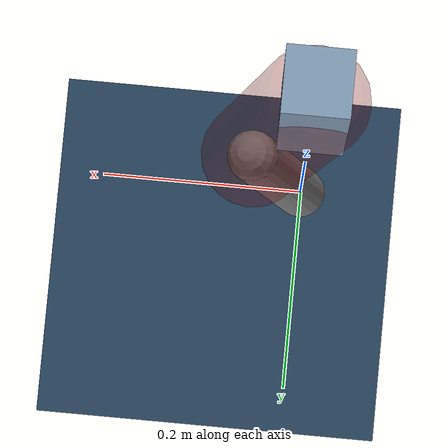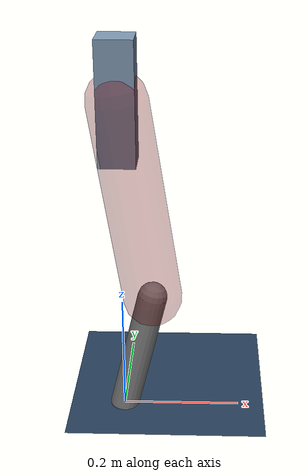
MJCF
<mujoco model="Hopper2D">
	<compiler inertiafromgeom="true" angle="radian" />
	<option timestep="0.001" integrator="implicit" cone="elliptic" solver="Newton" tolerance="1e-10" />

	<default>
		<geom contype="1" conaffinity="1" condim="3" friction="2 0.005 0.0001" solref="0.005 1" />
		<joint limited="true" damping="0.1" />
	</default>

	<asset>
		<texture name="skybox" type="skybox" builtin="gradient" rgb1=".4 .6 .8" rgb2="0 0 0" width="800" height="800" />
		<texture name="grid" type="2d" builtin="checker" rgb1=".1 .2 .3" rgb2=".2 .3 .4" width="300" height="300" mark="edge" markrgb=".2 .3 .4" />
		<material name="ground" texture="grid" texrepeat="1 1" texuniform="true" reflectance="0.1" />
		<material name="leg" rgba="0.5 0.6 0.7 1" />
	</asset>

	<worldbody>

		<geom name="floor" type="plane" size="5 5 0.25" material="ground" />

		<light directional="false" diffuse="0.8 0.8 0.8" specular="0.3 0.3 0.3" pos="0 0 2" dir="0 0 -1" />
		<light mode="targetbodycom" target="base" directional="false" diffuse="0.8 0.8 0.8" specular="0.3 0.3 0.3" pos="0 0 2" dir="0 0 -1" />

		<camera name="fixed" pos="0 -2 1" xyaxes="1 0 0 0 0 1" />
		<camera name="tracking" mode="trackcom" pos="0 -3 1" />

		<body name="root" pos="0 0 0.5495208109967371">
			<joint name="slide_x" type="slide" axis="1 0 0" range="-100 100" />
			<joint name="slide_z" type="slide" axis="0 0 1" range="0 10" />

			<body name="base" pos="0 0 0">
				<geom name="torso" type="box" size="0.03 0.03 0.1" mass="3.027" material="leg" />

				<body name="link1" pos="0 0 0" euler="0 1.4199169260471436 0">
					<joint type="hinge" axis="0 -1 0" pos="0 0 0" name="hinge1" limited="true" range="-3.14 3.14" stiffness="0" damping="0.1" />
					<geom name="thigh" type="capsule" fromto="0 0 0 0.34139163957800234 0 0" size="0.05" rgba="0.5 0 0 0.3" mass="1.1024965908184066" />

					<body name="link2" pos="0.34139163957800234 0 0" euler="0 0.38834985270697364 0">
						<joint type="hinge" axis="0 -1 0" pos="0 0 0" name="hinge2" limited="true" range="-3.14 3.14" stiffness="0" damping="0.1" />
						<geom name="shank" type="capsule" fromto="0 0 0 0.21812917141873484 0 0" size="0.025" mass="0.41610333713498787" />

					</body>
				</body>
			</body>
		</body>
	</worldbody>

	<actuator>
		<motor name="torque1" joint="hinge1" ctrlrange="-97.46384949652946 97.46384949652946" ctrllimited="true" gear="1" />
		<motor name="torque2" joint="hinge2" ctrlrange="-135.61256052323347 135.61256052323347" ctrllimited="true" gear="1" />
	</actuator>
</mujoco>
